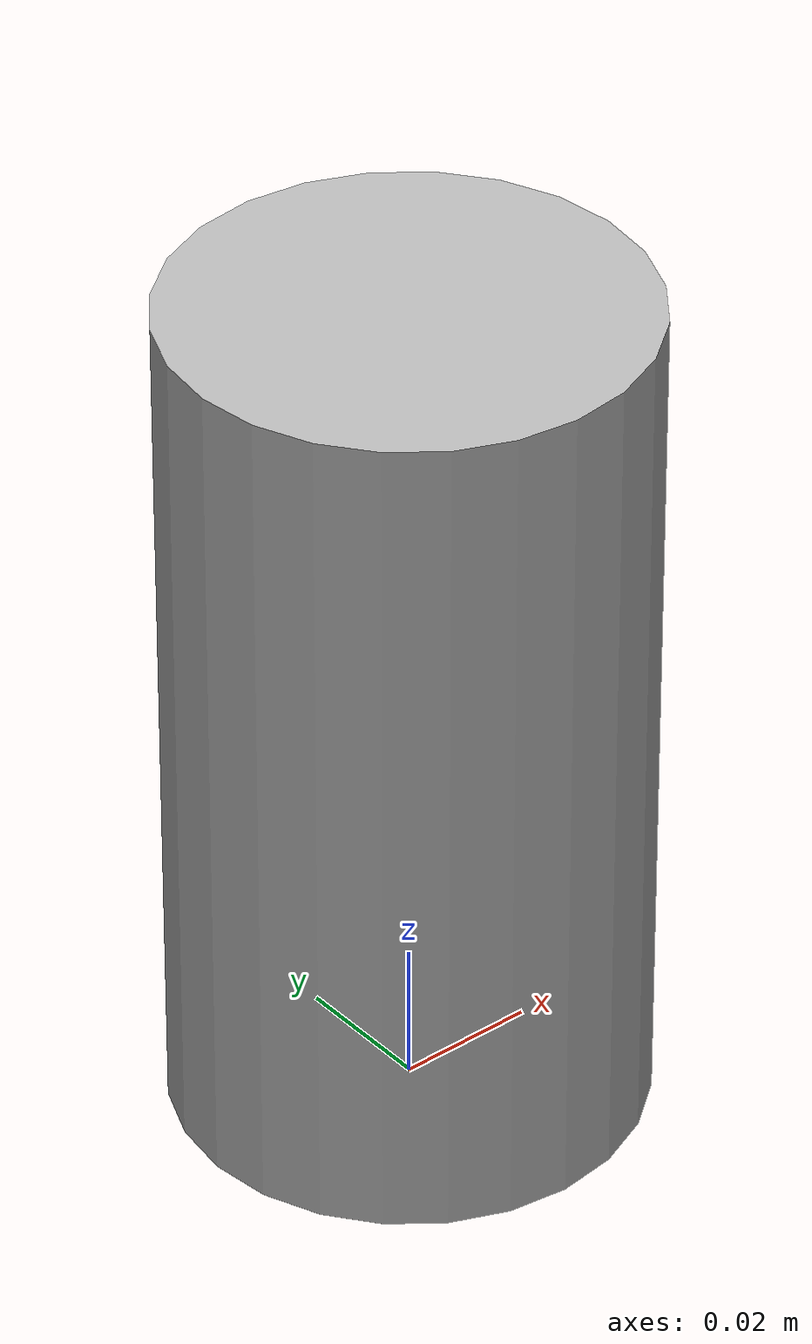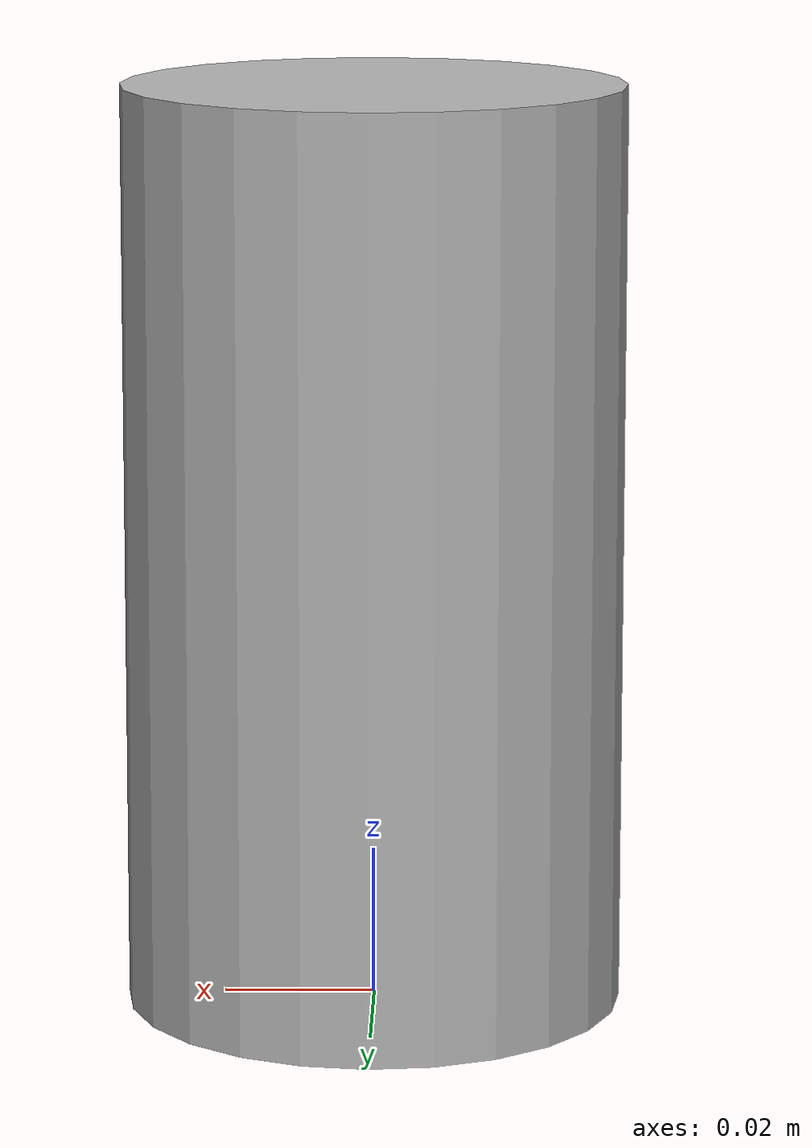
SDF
<?xml version="1.0" ?>
<sdf version='1.4'>
  <model name="cafe_beer">
    <static>0</static>
    <link name="link">
      <pose>0 0 0.061341 0 0 0</pose>
      <inertial>
        <mass>0.20</mass>
        <inertia>
          <ixx>0.000305</ixx>
          <ixy>0</ixy>
          <ixz>0</ixz>
          <iyy>0.000305</iyy>
          <iyz>0</iyz>
          <izz>0.000109</izz>
        </inertia>
      </inertial>
      <collision name="collision">
        <geometry>
          <cylinder>
            <radius>0.03302</radius>
            <length>0.122682</length>
          </cylinder>
        </geometry>
        <surface>
          <friction>
            <ode>
              <mu>0.8</mu>
              <mu2>0.8</mu2>
            </ode>
          </friction>
          <contact>
            <ode>
              <kp>1000000.0</kp>
              <kd>1.0</kd>
              <max_vel>0.0</max_vel>
              <min_depth>0.0001</min_depth>
            </ode>
          </contact>
        </surface>
      </collision>
      <visual name="visual">
        <geometry>
          <cylinder>
            <radius>0.03302</radius>
            <length>0.122682</length>
          </cylinder>
        </geometry>
        <material>
          <script>
            <uri>model://beer/materials/scripts</uri>
            <uri>model://beer/materials/textures</uri>
            <name>Beer/Diffuse</name>
          </script>
        </material>
      </visual>
      <self_collide>0</self_collide>
      <kinematic>0</kinematic>
      <gravity>1</gravity>
    </link>
  </model>
</sdf>
